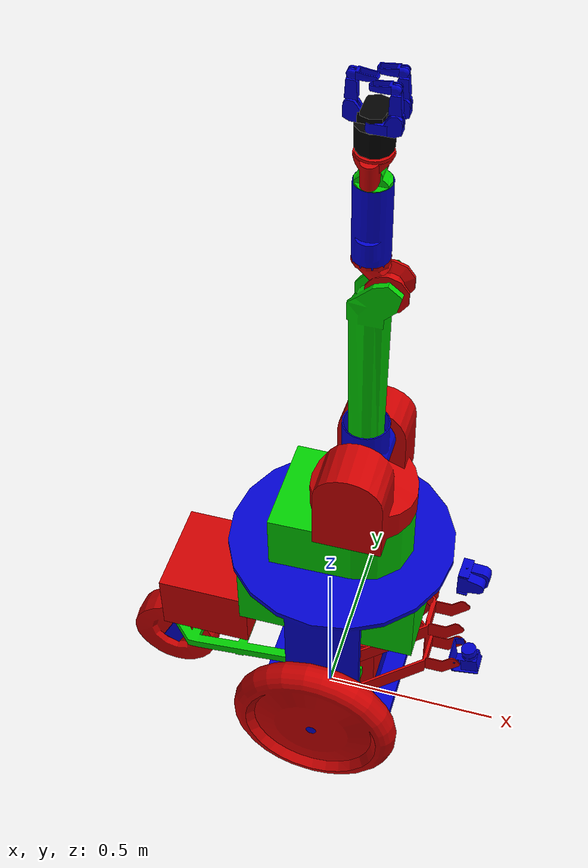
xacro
<?xml version="1.0"?>
<robot name="segbot"
	xmlns:sensor="http://playerstage.sourceforge.net/gazebo/xmlschema/#sensor"
	xmlns:controller="http://playerstage.sourceforge.net/gazebo/xmlschema/#controller"
	xmlns:interface="http://playerstage.sourceforge.net/gazebo/xmlschema/#interface">

	<!-- include gazebo defs-->
	<include filename="$(find segbot_description)/urdf/gazebo.urdf"/>

	<!-- include base defs-->
	<include filename="$(find segbot_description)/urdf/base.urdf"/>

	<!-- include arm defs-->
	<include filename="$(find segbot_description)/urdf/arm.urdf"/>

	<!-- include hand defs-->
	<include filename="$(find segbot_description)/urdf/hand.urdf"/>

	<!-- include sensors defs-->
	<include filename="$(find segbot_description)/urdf/sensors.urdf"/>
</robot>

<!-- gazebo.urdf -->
<robot name="gazebo"
	xmlns:sensor="http://playerstage.sourceforge.net/gazebo/xmlschema/#sensor"
	xmlns:controller="http://playerstage.sourceforge.net/gazebo/xmlschema/#controller"
	xmlns:interface="http://playerstage.sourceforge.net/gazebo/xmlschema/#interface">

  <material name="Blue">
    <color rgba="0.0 0.0 0.8 1.0"/>
  </material>
  <material name="Green">
    <color rgba="0.0 0.8 0.0 1.0"/>
  </material>
  <material name="Red">
    <color rgba="0.8 0.0 0.0 1.0"/>
  </material>
  <material name="White">
    <color rgba="0.0 0.0 0.0 1.0"/>
  </material>

  <gazebo>
    <controller:gazebo_ros_controller_manager name="gazebo_ros_controller_manager" plugin="libgazebo_ros_controller_manager.so">
      <alwaysOn>true</alwaysOn>
      <updateRate>1000.0</updateRate>
      <interface:audio name="gazebo_ros_controller_manager_dummy_iface" />
    </controller:gazebo_ros_controller_manager>
  </gazebo>

</robot>

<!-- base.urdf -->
<robot name="base"
       xmlns:sensor="http://playerstage.sourceforge.net/gazebo/xmlschema/#sensor"
       xmlns:controller="http://playerstage.sourceforge.net/gazebo/xmlschema/#controller"
       xmlns:xacro="http://ros.org/wiki/fixme"
       xmlns:interface="http://playerstage.sourceforge.net/gazebo/xmlschema/#interface">>

<!-- JOINT LIMIT VALUES FOR EFFORT AND VELOCITY NEED TO BE ADDED FOR REVOLUTE AND CONTINUOUS JOINTS -->

  <!-- base_footprint is a fictitious link(frame) that is on the ground right below base_link origin,
       navigation stack dedpends on this frame -->
  <link name="base_footprint">
    <inertial>
      <mass value="0.000001" />
      <origin xyz="0 0 0" />
      <inertia ixx="0.01" ixy="0.0" ixz="0.0"
               iyy="0.01" iyz="0.0" izz="0.01" />
    </inertial>
    <visual>
      <origin xyz="0 0 0" rpy="0 0 0" />
      <geometry>
        <box size="0.0 0.0 0.0" />
      </geometry>

      <material name="Green" />
    </visual>
    <collision>
      <!-- represent base collision with a simple rectangular model, positioned by base_size_z s.t. top
           surface of the collision box matches the top surface of the PR2 base -->
      <origin xyz="0 0 0" rpy="0 0 0" />
      <geometry>
        <box size="0.00 0.00 0.00" />
      </geometry>
    </collision>
  </link>

  <!-- Base -->

  <!-- Links -->
  <link name="base_link">
    <inertial>
      <origin xyz="0 -0.3 0" rpy="0 0 0" />
      <mass value="90.72"/>
      <inertia ixx="1.2285"  ixy="0"  ixz="0" iyy="1.961064" iyz="0" izz="1.337364" />
    </inertial>

    <visual>
      <origin xyz="0 0 0" rpy="0 0 0" />
      <geometry name="segway_base_geom">
        <mesh filename="package://segway_robot/meshes/segway_base.stl" />
      </geometry>
      <material name="Blue" />
    </visual>

    <collision>
      <origin xyz="0 0 0" rpy="0 0 0" />
      <geometry name="segway_base_collision_geom">
      <mesh filename="package://segway_robot/meshes/convex/segway_base_convex.stlb" />
      </geometry>
    </collision>

  </link>

  <link name="segway_left_wheel">
    <inertial>
      <origin xyz="0 0 0" rpy="0 0 0" />
      <mass value="3.87"/>
      <inertia ixx="0.0852"  ixy="0"  ixz="0" iyy="0.0852" iyz="0" izz="0.1654" />
    </inertial>

    <visual>
      <origin xyz="0 0 0" rpy="0 0 0" />
      <geometry name="segway_left_wheel_geom">
        <mesh filename="package://segway_robot/meshes/segway_wheel.stl" />
      </geometry>
      <material name="Red" />
    </visual>

    <collision>
      <origin xyz="0 0 0" rpy="0 0 0" />
      <geometry name="segway_left_wheel_collision_geom">
      	<cylinder radius="0.2365" length="0.093"/>
      </geometry>
    </collision>

  </link>

  <link name="segway_right_wheel">
    <inertial>
      <origin xyz="0 0 0" rpy="0 0 0" />
      <mass value="3.87"/>
      <inertia ixx="0.0852"  ixy="0"  ixz="0" iyy="0.0852" iyz="0" izz="0.1654" />
    </inertial>

    <visual>
      <origin xyz="0 0 0" rpy="0 0 0" />
      <geometry name="segway_right_wheel_geom">
        <mesh filename="package://segway_robot/meshes/segway_wheel.stl"/>
      </geometry>
      <material name="Red" />
    </visual>

    <collision>
      <origin xyz="0 0 0" rpy="0 0 0" />
      <geometry name="segway_right_wheel_collision_geom">
      	<cylinder radius="0.2365" length="0.093"/>
      </geometry>
    </collision>

  </link>

  <link name="segway_trailer">
    <inertial>
      <origin xyz="0.15 0.075 0" rpy="0 0 0" />
      <mass value="34.54"/>
      <inertia ixx="0.288"  ixy="0"  ixz="0" iyy="0.547" iyz="0" izz="0.446" />
    </inertial>

    <visual>
      <origin xyz="0 0 0" rpy="0 0 0" />
      <geometry name="segway_trailer-geom">
          <mesh filename="package://segway_robot/meshes/trailer.stl" />
      </geometry>
      <material name="Green" />
    </visual>

    <collision>
      <origin xyz="0 0 0" rpy="0 0 0" />
      <geometry name="segway_trailer_collision_geom">
        <mesh filename="package://segway_robot/meshes/convex/trailer_convex.stlb" />
      </geometry>
    </collision>

  </link>

  <link name="segway_trailer_wheel_caster">
    <inertial>
      <origin xyz="0 0 0" rpy="0 0 0" />
      <mass value="1.2"/>
      <inertia ixx="0.01"  ixy="0"  ixz="0" iyy="0.01" iyz="0" izz="0.01" />
    </inertial>

    <visual>
      <origin xyz="0 0 0" rpy="0 0 0" />
      <geometry name="segway_trailer_wheel_caster-geom">
          <mesh filename="package://segway_robot/meshes/trailer_wheel_caster.stl" />
      </geometry>
      <material name="Blue" />
    </visual>

    <collision>
      <origin xyz="0 0 0" rpy="0 0 0" />
      <geometry name="segway_trailer_wheel_caster_collision_geom">
        <mesh filename="package://segway_robot/meshes/convex/trailer_wheel_caster_convex.stlb" />
      </geometry>
    </collision>

  </link>

  <link name="segway_trailer_wheel">
    <inertial>
      <origin xyz="0 0 0" rpy="0 0 0" />
      <mass value="2.5"/>
      <inertia ixx="0.042"  ixy="0"  ixz="0" iyy="0.042" iyz="0" izz="0.082" />
    </inertial>

    <visual>
      <origin xyz="0 0 0" rpy="0 0 0" />
      <geometry name="segway_trailer_wheel-geom">
          <mesh filename="package://segway_robot/meshes/trailer_wheel.stl" />
      </geometry>
      <material name="Red" />
    </visual>

    <collision>
      <origin xyz="0 0 0" rpy="0 0 0" />
      <geometry name="segway_trailer_wheel_collision_geom">
        <cylinder radius="0.1285" length="0.097"/>
      </geometry>
    </collision>

  </link>

  <link name="battery_one">
    <inertial>
      <origin xyz="0 0 0" rpy="0 0 0" />
      <mass value="22.68"/>
      <inertia ixx="0.201"  ixy="0"  ixz="0" iyy="0.263" iyz="0" izz="0.182" />
    </inertial>

    <visual>
      <origin xyz="0 0 0" rpy="0 0 0" />
      <geometry name="battery_one_geom">
	<box size = "0.254 0.178 0.273" />
      </geometry>
      <material name="Red" />
    </visual>

    <collision>
      <origin xyz="0 0 0" rpy="0 0 0" />
      <geometry name="battery_one_collision_geom">
	<box size = "0.254 0.178 0.273" />
      </geometry>
    </collision>

  </link>

  <link name="battery_two">
    <inertial>
      <origin xyz="0 0 0" rpy="0 0 0" />
      <mass value="22.68"/>
      <inertia ixx="0.201"  ixy="0"  ixz="0" iyy="0.263" iyz="0" izz="0.182" />
    </inertial>

    <visual>
      <origin xyz="0 0 0" rpy="0 0 0" />
      <geometry name="battery_two_geom">
	<box size = "0.254 0.178 0.273" />
      </geometry>
      <material name="Red" />
    </visual>

    <collision>
      <origin xyz="0 0 0" rpy="0 0 0" />
      <geometry name="battery_two_collision_geom">
	<box size = "0.254 0.178 0.273" />
      </geometry>
    </collision>

  </link>

  <link name="computer">
    <inertial>
      <origin xyz="0 0 0" rpy="0 0 0" />
      <mass value="4.54"/>
      <inertia ixx="0.063"  ixy="0"  ixz="0" iyy="0.136" iyz="0" izz="0.103" />
    </inertial>

    <visual>
      <origin xyz="0 0 0" rpy="0 0 0" />
      <geometry name="computer_geom">
	<box size = "0.484 0.198 0.356" />
      </geometry>
      <material name="Green" />
    </visual>

    <collision>
      <origin xyz="0 0 0" rpy="0 0 0" />
      <geometry name="segway_base_collision_geom">
	<box size = "0.484 0.198 0.356" />
      </geometry>
    </collision>

  </link>

  <link name="segway_laser_bracket">
    <inertial>
      <origin xyz="0 0 0" rpy="0 0 0" />
      <mass value="2.27"/>
      <inertia ixx="0.01"  ixy="0"  ixz="0" iyy="0.01" iyz="0" izz="0.01" />
    </inertial>

    <visual>
      <origin xyz="0 0 0" rpy="0 0 0" />
      <geometry name="segway_laser_bracket-geom">
          <mesh filename="package://segway_robot/meshes/laser_bracket.stl" />
      </geometry>
      <material name="Red" />
    </visual>

    <collision>
      <origin xyz="0 0 0" rpy="0 0 0" />
      <geometry name="segway_laser_bracket_collision_geom">
      <mesh filename="package://segway_robot/meshes/convex/laser_bracket_convex.stlb" />
      </geometry>
    </collision>

  </link>

  <link name="R283_hokuyo_laser1">
    <inertial>
      <origin xyz="-0.025 -0.017 0" rpy="0 0 0" />
      <mass value="0.37"/>
      <inertia ixx="0.0004"  ixy="0"  ixz="0" iyy="0.0004" iyz="0" izz="0.0004" />
    </inertial>

    <visual>
      <origin xyz="0 0 0" rpy="0 0 0" />
      <geometry name="R283_hokuyo_laser1-geom">
          <mesh filename="package://segway_robot/meshes/R283_hokuyo_laser1.stl" />
      </geometry>
      <material name="Blue" />
    </visual>

    <collision>
      <origin xyz="0 0 0" rpy="0 0 0" />
      <geometry name="R283_hokuyo_laser1_collision_geom">
      <mesh filename="package://segway_robot/meshes/convex/R283_hokuyo_laser1_convex.stlb" />
      </geometry>
    </collision>

  </link>

  <link name="R313_hokuyo_laser2">
    <inertial>
      <origin xyz="-0.023 0 0" rpy="3.14159 0 0" />
      <mass value="0.37"/>
      <inertia ixx="0.0004"  ixy="0"  ixz="0" iyy="0.0004" iyz="0" izz="0.0004" />
    </inertial>

    <visual>
      <origin xyz="0 0 0" rpy="3.14159 0 0" />
      <geometry name="R313_hokuyo_laser2-geom">
          <mesh filename="package://segway_robot/meshes/R313_hokuyo_laser2.stl" />
      </geometry>
      <material name="Blue" />
    </visual>

    <collision>
      <origin xyz="0 0 0" rpy="3.14159 0 0" />
      <geometry name="R283_hokuyo_laser1_collision_geom">
      <mesh filename="package://segway_robot/meshes/convex/R313_hokuyo_laser2_convex.stlb" />
      </geometry>
    </collision>

  </link>

  <!-- Joints -->

  <joint name="base_footprint_joint" type="fixed">
    <origin xyz="0 0 0.55" rpy="1.57 0 3.14159" />
    <child link="base_link" />
    <parent link="base_footprint"/>
  </joint>

  <joint name="segway_left_wheel_joint" type="continuous" >
    <origin xyz="-0.031 -0.353 0.272" rpy="0 0 0"/>
    <axis xyz="0 0 1"/>
    <limit effort="122" velocity="500"/>
    <parent link="base_link" />
    <child link="segway_left_wheel" />
    <calibration reference_position="0.0"/>
  </joint>

  <joint name="segway_right_wheel_joint" type="continuous" >
    <origin xyz="-0.031 -0.353 -0.272" rpy="0 3.14 0"/>
    <axis xyz="0 0 1"/>
    <limit effort="122" velocity="500"/>
    <parent link="base_link" />
    <child link="segway_right_wheel" />
    <calibration reference_position="0.0"/>
  </joint>

  <joint name="segway_trailer_joint" type="fixed">
    <origin xyz="0.162 -0.233 0.002" rpy="0 0 0" />
    <parent link="base_link" />
    <child link="segway_trailer" />
    <calibration reference_position="0.0"/>
  </joint>

  <joint name="segway_trailer_wheel_caster_joint" type="continuous">
    <origin xyz="0.244 -0.038 0.002" rpy="0 0 0" />
    <axis xyz="0 1 0"/>
    <parent link="segway_trailer" />
    <child link="segway_trailer_wheel_caster" />
    <calibration reference_position="0.0"/>
  </joint>

  <joint name="segway_trailer_wheel_joint" type="continuous">
    <origin xyz="0.076 -0.187 0.002" rpy="0 0 0" />
    <axis xyz="0 0 1"/>
    <parent link="segway_trailer_wheel_caster" />
    <child link="segway_trailer_wheel" />
    <calibration reference_position="0.0"/>
  </joint>

  <joint name="battery_one_joint" type="fixed">
    <origin xyz="-0.037 -0.231 0" rpy="0 0 0" />
    <parent link="base_link" />
    <child link="battery_one" />
    <calibration reference_position="0.0"/>
  </joint>

  <joint name="battery_two_joint" type="fixed">
    <origin xyz="0.171 0.074 0" rpy="0 0 0" />
    <parent link="segway_trailer" />
    <child link="battery_two" />
    <calibration reference_position="0.0"/>
  </joint>

  <joint name="computer_joint" type="fixed">
    <origin xyz="-0.033 0.025 0" rpy="0 0 0" />
    <parent link="base_link" />
    <child link="computer" />
    <calibration reference_position="0.0"/>
  </joint>

  <joint name="segway_laser_bracket_joint" type="fixed">
    <origin xyz="-0.213 -0.2 0.002" rpy="0 0 0" />
    <parent link="base_link" />
    <child link="segway_laser_bracket" />
    <calibration reference_position="0.0"/>
  </joint>

  <joint name="R283_hokuyo_laser1_joint" type="revolute">
    <origin xyz="-0.162 -0.062 0" rpy="0 0 -0.1848" />
    <axis xyz="0 0 1"/>
    <limit lower="-1.047" upper="1.047" effort="50" velocity="50"/>
    <parent link="segway_laser_bracket" />
    <child link="R283_hokuyo_laser1" />
    <calibration reference_position="0.0"/>
  </joint>

  <joint name="R313_hokuyo_laser2_joint" type="revolute">
    <origin xyz="-0.162 0.283 0" rpy="1.57 -0.05 0" />
    <axis xyz="0 0 1"/>
    <limit lower="-1.047" upper="1.047" effort="50" velocity="50"/>
    <parent link="segway_laser_bracket" />
    <child link="R313_hokuyo_laser2" />
    <calibration reference_position="0.0"/>
  </joint>

  <!-- Gazebo uses this to color -->

  <gazebo reference="base_link">
    <material value="Gazebo/Blue"/>
    <turnGravityOff>false</turnGravityOff>
  </gazebo>

  <gazebo reference="segway_left_wheel">
    <material value="Gazebo/Red"/>
    <turnGravityOff>false</turnGravityOff>
  </gazebo>

  <gazebo reference="segway_right_wheel">
    <material value="Gazebo/Red"/>
    <turnGravityOff>false</turnGravityOff>
  </gazebo>

  <gazebo reference="segway_trailer">
    <material value="Gazebo/Green"/>
    <turnGravityOff>false</turnGravityOff>
  </gazebo>

  <gazebo reference="segway_trailer_wheel_caster">
    <material value="Gazebo/Blue"/>
    <turnGravityOff>false</turnGravityOff>
  </gazebo>

  <gazebo reference="segway_trailer_wheel">
    <material value="Gazebo/Red"/>
    <turnGravityOff>false</turnGravityOff>
  </gazebo>

  <gazebo reference="battery_one">
    <material value="Gazebo/Red"/>
    <turnGravityOff>false</turnGravityOff>
  </gazebo>

  <gazebo reference="battery_two">
    <material value="Gazebo/Red"/>
    <turnGravityOff>false</turnGravityOff>
  </gazebo>

  <gazebo reference="computer">
    <material value="Gazebo/Green"/>
    <turnGravityOff>false</turnGravityOff>
  </gazebo>

  <gazebo reference="segway_laser_bracket">
    <material value="Gazebo/Green"/>
    <turnGravityOff>false</turnGravityOff>
  </gazebo>

  <gazebo reference="R283_hokuyo_laser1">
    <material value="Gazebo/Red"/>
    <turnGravityOff>false</turnGravityOff>
  </gazebo>

  <gazebo reference="R313_hokuyo_laser2">
    <material value="Gazebo/Red"/>
    <turnGravityOff>false</turnGravityOff>
  </gazebo>

  <!-- Transmits the joints -->

  <transmission name="segway_left_wheel_trans" type="SimpleTransmission">
    <actuator name="segway_left_wheel_motor"/>
    <joint name="segway_left_wheel_joint"/>
    <mechanicalReduction>1.0</mechanicalReduction>
  </transmission>

  <transmission name="segway_right_wheel_trans" type="SimpleTransmission">
    <actuator name="segway_right_wheel_motor"/>
    <joint name="segway_right_wheel_joint"/>
    <mechanicalReduction>1.0</mechanicalReduction>
  </transmission>

  <transmission name="segway_trailer_wheel_caster_trans" type="SimpleTransmission">
    <actuator name="segway_trailer_wheel_caster_motor"/>
    <joint name="segway_trailer_wheel_caster_joint"/>
    <mechanicalReduction>1.0</mechanicalReduction>
  </transmission>

  <transmission name="segway_trailer_wheel_trans" type="SimpleTransmission">
    <actuator name="segway_trailer_wheel_motor"/>
    <joint name="segway_trailer_wheel_joint"/>
    <mechanicalReduction>1.0</mechanicalReduction>
  </transmission>

  <transmission name="R283_hokuyo_laser1_trans" type="SimpleTransmission">
    <actuator name="R283_hokuyo_laser1_motor"/>
    <joint name="R283_hokuyo_laser1_joint"/>
    <mechanicalReduction>1.0</mechanicalReduction>
  </transmission>

  <transmission name="R313_hokuyo_laser2_trans" type="SimpleTransmission">
    <actuator name="R313_hokuyo_laser2_motor"/>
    <joint name="R313_hokuyo_laser2_joint"/>
    <mechanicalReduction>1.0</mechanicalReduction>
  </transmission>

  <gazebo>
    <controller:gazebo_ros_p3d name="p3d_base_controller" plugin="libgazebo_ros_p3d.so">
      <alwaysOn>true</alwaysOn>
      <updateRate>100.0</updateRate>
      <bodyName>base_footprint</bodyName>
      <topicName>base_pose_ground_truth</topicName>
      <gaussianNoise>0.01</gaussianNoise>
      <frameName>map</frameName>
      <xyzOffsets>25.7 25.7 0</xyzOffsets> <!-- initialize odometry for fake localization-->
      <rpyOffsets>0 0 0</rpyOffsets>
      <interface:position name="p3d_base_position"/>
    </controller:gazebo_ros_p3d>
    <canonicalBody>base_footprint</canonicalBody>
  </gazebo>

</robot>

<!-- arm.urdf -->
<robot name="arm"
       xmlns:sensor="http://playerstage.sourceforge.net/gazebo/xmlschema/#sensor"
       xmlns:controller="http://playerstage.sourceforge.net/gazebo/xmlschema/#controller"
       xmlns:xacro="http://ros.org/wiki/fixme"
       xmlns:interface="http://playerstage.sourceforge.net/gazebo/xmlschema/#interface">>

<!-- JOINT LIMIT VALUES FOR EFFORT AND VELOCITY NEED TO BE ADDED FOR REVOLUTE AND CONTINUOUS JOINTS -->

  <!-- Arm -->

  <!-- Links -->
  <link name="arm_base">
    <inertial>
        <origin xyz="0 0.08 -0.04" rpy="0 0 0" />
        <mass value="10"/>
        <inertia ixx="0.129"  ixy="0"  ixz="0" iyy="0.173" iyz="0" izz="0.087" />
    </inertial>

    <visual>
        <origin xyz="0 0 0" rpy="0 0 0" />
        <geometry name="arm_base-geom">
          <mesh filename="package://segway_robot/meshes/arm_base.stl" />
        </geometry>
        <material name="Green" />
    </visual>

    <collision>
      <origin xyz="0 0 0" rpy="0 0 0" />
      <geometry name="arm_base_collision_geom">
      <mesh filename="package://segway_robot/meshes/convex/arm_base_convex.stlb" />
      </geometry>
    </collision>

  </link>

  <link name="shoulder_pan">
    <inertial>
        <origin xyz="0 -0.048 0" rpy="0 0 0" />
        <mass value="8.394"/>
        <inertia ixx="0.138"  ixy="0"  ixz="0" iyy="0.14" iyz="0" izz="0.108" />
    </inertial>

    <visual>
        <origin xyz="0 0 0" rpy="0 0 0" />
        <geometry name="shoulder_pan-geom">
          <mesh filename="package://segway_robot/meshes/shoulder_pan.stl" />
        </geometry>
        <material name="Red" />
    </visual>

    <collision>
      <origin xyz="0 0 0" rpy="0 0 0" />
      <geometry name="shoulder_pan_collision_geom">
      <mesh filename="package://segway_robot/meshes/convex/shoulder_pan_convex.stlb" />
      </geometry>
    </collision>

  </link>

  <link name="shoulder_pitch">
    <inertial>
        <origin xyz="0 0.023 0" rpy="0 0 0" />
        <mass value="4.849"/>
        <inertia ixx="0.018"  ixy="0"  ixz="0" iyy="0.012" iyz="0" izz="0.018" />
    </inertial>

    <visual>
        <origin xyz="0 0 0" rpy="0 0 0" />
        <geometry name="shoulder_pitch-geom">
          <mesh filename="package://segway_robot/meshes/shoulder_pitch.stl" />
        </geometry>
        <material name="Blue" />
    </visual>

    <collision>
      <origin xyz="0 0 0" rpy="0 0 0" />
      <geometry name="shoulder_pitch_collision_geom">
      <mesh filename="package://segway_robot/meshes/convex/shoulder_pitch_convex.stlb" />
      </geometry>
    </collision>

  </link>

  <link name="upper_arm_roll">
    <inertial>
        <origin xyz="0 0.295 -0.02" rpy="0 0 0" />
        <mass value="1.725"/>
        <inertia ixx="0.051"  ixy="0"  ixz="0" iyy="0.002" iyz="0" izz="0.051" />
    </inertial>

    <visual>
        <origin xyz="0 0 0" rpy="0 0 0" />
        <geometry name="upper_arm_roll-geom">
          <mesh filename="package://segway_robot/meshes/upper_arm_roll.stl" />
        </geometry>
        <material name="Green" />
    </visual>

    <collision>
      <origin xyz="0 0 0" rpy="0 0 0" />
      <geometry name="upper_arm_roll_collision_geom">
      <mesh filename="package://segway_robot/meshes/convex/upper_arm_roll_convex.stlb" />
      </geometry>
    </collision>

  </link>

  <link name="elbow_lift">
    <inertial>
        <origin xyz="0 0.018 0.013" rpy="0 0 0" />
        <mass value="0.481"/>
        <inertia ixx="0.001"  ixy="0"  ixz="0" iyy="0.001" iyz="0" izz="0.001" />
    </inertial>

    <visual>
        <origin xyz="0 0 0" rpy="0 0 0" />
        <geometry name="elbow_lift-geom">
          <mesh filename="package://segway_robot/meshes/elbow_lift.stl" />
        </geometry>
        <material name="Red" />
    </visual>

    <collision>
      <origin xyz="0 0 0" rpy="0 0 0" />
      <geometry name="elbow_lift_collision_geom">
      <mesh filename="package://segway_robot/meshes/convex/elbow_lift_convex.stlb" />
      </geometry>
    </collision>

  </link>

  <link name="forearm_roll">
    <inertial>
        <origin xyz="0 0.100 0" rpy="0 0 0" />
        <mass value="1.602"/>
        <inertia ixx="0.007"  ixy="0"  ixz="0" iyy="0.003" iyz="0" izz="0.007" />
    </inertial>

    <visual>
        <origin xyz="0 0 0" rpy="0 0 0" />
        <geometry name="forearm_roll-geom">
          <mesh filename="package://segway_robot/meshes/forearm_roll.stl" />
        </geometry>
        <material name="Blue" />
    </visual>

    <collision>
      <origin xyz="0 0 0" rpy="0 0 0" />
      <geometry name="forearm_roll_collision_geom">
      <mesh filename="package://segway_robot/meshes/convex/forearm_roll_convex.stlb" />
      </geometry>
    </collision>

  </link>

  <link name="wrist_roll">
    <inertial>
        <origin xyz="0 -0.002 0" rpy="0 0 0" />
        <mass value="1.18"/>
        <inertia ixx="0.001"  ixy="0"  ixz="0" iyy="0.001" iyz="0" izz="0.001" />
    </inertial>

    <visual>
        <origin xyz="0 0 0" rpy="0 0 0" />
        <geometry name="wrist_roll-geom">
          <mesh filename="package://segway_robot/meshes/wrist_roll.stl" />
        </geometry>
        <material name="Green" />
    </visual>

    <collision>
      <origin xyz="0 0 0" rpy="0 0 0" />
      <geometry name="wrist_roll_collision_geom">
      <mesh filename="package://segway_robot/meshes/convex/wrist_roll_convex.stlb" />
      </geometry>
    </collision>

  </link>

  <link name="wrist_pitch">
    <inertial>
        <origin xyz="-0.007 0.018 0" rpy="0 0 0" />
        <mass value="0.307"/>
        <inertia ixx="0.0004"  ixy="0"  ixz="0" iyy="0.0005" iyz="0" izz="0.0005" />
    </inertial>

    <visual>
        <origin xyz="0 0 0" rpy="0 0 0" />
        <geometry name="wrist_pitch-geom">
          <mesh filename="package://segway_robot/meshes/wrist_pitch.stl" />
        </geometry>
        <material name="Red" />
    </visual>

    <collision>
      <origin xyz="0 0 0" rpy="0 0 0" />
      <geometry name="wrist_pitch_collision_geom">
      <mesh filename="package://segway_robot/meshes/convex/wrist_pitch_convex.stlb" />
      </geometry>
    </collision>

  </link>

  <!-- Joints -->
  <joint name="arm_base_joint" type="fixed">
    <origin xyz="-0.088 0.14 0.005" rpy="0 -1.57 0" />
    <child link="arm_base" />
    <parent link="base_link"/>
  </joint>

  <joint name="shoulder_pan_joint" type="revolute">
    <origin xyz="0 0.346 0" rpy="0 1.57 0" />
    <axis xyz="0 1 0"/>
    <limit lower="-2.6" upper="2.6" effort="50" velocity="50"/>
    <child link="shoulder_pan" />
    <parent link="arm_base"/>
  </joint>

  <joint name="shoulder_pitch_joint" type="revolute">
    <origin xyz="0 0 0" rpy="0 1.57 0" />
    <axis xyz="1 0 0"/>
    <limit lower="-2" upper="2" effort="50" velocity="50"/>
    <child link="shoulder_pitch" />
    <parent link="shoulder_pan"/>
  </joint>

  <joint name="upper_arm_roll_joint" type="revolute">
    <origin xyz="0 0 0" rpy="0 0 0" />
    <axis xyz="0 1 0"/>
    <limit lower="-2.8" upper="2.8" effort="50" velocity="50"/>
    <child link="upper_arm_roll" />
    <parent link="shoulder_pitch"/>
  </joint>

  <joint name="elbow_lift_joint" type="revolute">
    <origin xyz="0 0.550 -0.045" rpy="-1.57 3.14 0 " />
    <axis xyz="1 0 0"/>
    <limit lower="-0.9" upper="3.1" effort="50" velocity="50"/>
    <child link="elbow_lift" />
    <parent link="upper_arm_roll"/>
  </joint>

  <joint name="forearm_roll_joint" type="revolute">
    <origin xyz="0 0.045 0.072" rpy="1.57 0 0" />
    <axis xyz="0 1 0"/>
    <limit lower="-4.8" upper="1.3" effort="50" velocity="50"/>
    <child link="forearm_roll" />
    <parent link="elbow_lift"/>
  </joint>

  <joint name="wrist_roll_joint" type="revolute">
    <origin xyz="0 0.227 0" rpy="0 0 0" />
    <axis xyz="0 1 0"/>
    <limit lower="-2.2" upper="2.2" effort="50" velocity="50"/>
    <child link="wrist_roll" />
    <parent link="forearm_roll"/>
  </joint>

  <joint name="wrist_pitch_joint" type="revolute">
    <origin xyz="0 0 0" rpy="0 0 0" />
    <axis xyz="1 0 0"/>
    <limit lower="-1.6" upper="1.6" effort="50" velocity="50"/>
    <child link="wrist_pitch" />
    <parent link="wrist_roll"/>
  </joint>

  <!-- Gazebo data -->
  <gazebo reference="arm_base">
    <material value="Gazebo/Green"/>
    <turnGravityOff>false</turnGravityOff>
  </gazebo>

  <gazebo reference="shoulder_pan">
    <material value="Gazebo/Red"/>
    <turnGravityOff>false</turnGravityOff>
  </gazebo>

  <gazebo reference="shoulder_pitch">
    <material value="Gazebo/Blue"/>
    <turnGravityOff>false</turnGravityOff>
  </gazebo>

  <gazebo reference="upper_arm_roll">
    <material value="Gazebo/Green"/>
    <turnGravityOff>false</turnGravityOff>
  </gazebo>

  <gazebo reference="elbow_lift">
    <material value="Gazebo/Red"/>
    <turnGravityOff>false</turnGravityOff>
  </gazebo>

  <gazebo reference="forearm_roll">
    <material value="Gazebo/Blue"/>
    <turnGravityOff>false</turnGravityOff>
  </gazebo>

  <gazebo reference="wrist_roll">
    <material value="Gazebo/Green"/>
    <turnGravityOff>false</turnGravityOff>
  </gazebo>

  <gazebo reference="wrist_pitch">
    <material value="Gazebo/Red"/>
    <turnGravityOff>false</turnGravityOff>
  </gazebo>

  <!-- Transmits the joints -->
  <transmission name="shoulder_pan_joint_trans" type="SimpleTransmission">
    <actuator name="shoulder_pan_joint_motor"/>
    <joint name="shoulder_pan_joint"/>
    <mechanicalReduction>1.0</mechanicalReduction>
  </transmission>

  <transmission name="shoulder_pitch_joint_trans" type="SimpleTransmission">
    <actuator name="shoulder_pitch_joint_motor"/>
    <joint name="shoulder_pitch_joint"/>
    <mechanicalReduction>1.0</mechanicalReduction>
  </transmission>

  <transmission name="upper_arm_roll_joint_trans" type="SimpleTransmission">
    <actuator name="upper_arm_roll_joint_motor"/>
    <joint name="upper_arm_roll_joint"/>
    <mechanicalReduction>1.0</mechanicalReduction>
  </transmission>

  <transmission name="elbow_lift_joint_trans" type="SimpleTransmission">
    <actuator name="elbow_lift_joint_motor"/>
    <joint name="elbow_lift_joint"/>
    <mechanicalReduction>1.0</mechanicalReduction>
  </transmission>

  <transmission name="forearm_roll_joint_trans" type="SimpleTransmission">
    <actuator name="forearm_roll_joint_motor"/>
    <joint name="forearm_roll_joint"/>
    <mechanicalReduction>1.0</mechanicalReduction>
  </transmission>

  <transmission name="wrist_roll_joint_trans" type="SimpleTransmission">
    <actuator name="wrist_roll_joint_motor"/>
    <joint name="wrist_roll_joint"/>
    <mechanicalReduction>1.0</mechanicalReduction>
  </transmission>

  <transmission name="wrist_pitch_joint_trans" type="SimpleTransmission">
    <actuator name="wrist_pitch_joint_motor"/>
    <joint name="wrist_pitch_joint"/>
    <mechanicalReduction>1.0</mechanicalReduction>
  </transmission>

</robot>

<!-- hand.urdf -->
<robot name="hand"
       xmlns:sensor="http://playerstage.sourceforge.net/gazebo/xmlschema/#sensor"
       xmlns:controller="http://playerstage.sourceforge.net/gazebo/xmlschema/#controller"
       xmlns:xacro="http://ros.org/wiki/fixme"
       xmlns:interface="http://playerstage.sourceforge.net/gazebo/xmlschema/#interface">>

<!-- JOINT LIMIT VALUES FOR EFFORT AND VELOCITY NEED TO BE ADDED FOR REVOLUTE AND CONTINUOUS JOINTS -->

  <!-- Hand -->

  <!-- Links -->
  <link name="hand_base">
    <inertial>
        <origin xyz="0 0.0 0.0" rpy="0 0 0" />
        <mass value="0.35"/>
        <inertia ixx="1"  ixy="0"  ixz="0" iyy="1" iyz="0" izz="1" />
    </inertial>

    <visual>
        <origin xyz="0 0 0" rpy="0 0 0" />
        <geometry name="hand_base-geom">
          <mesh filename="package://segway_robot/meshes/hand_base.stl" />
        </geometry>
        <material name="White" />
    </visual>

    <collision>
      <origin xyz="0 0 0" rpy="0 0 0" />
      <geometry name="arm_base_collision_geom">
      <mesh filename="package://segway_robot/meshes/convex/hand_base_convex.stlb" />
      </geometry>
    </collision>

  </link>

  <link name="spreader_f1">
    <inertial>
        <origin xyz="0 0 0" rpy="0 0 0" />
        <mass value="0.05"/>
        <inertia ixx="1"  ixy="0"  ixz="0" iyy="1" iyz="0" izz="1" />
    </inertial>

    <visual>
        <origin xyz="0 0 0" rpy="0 0 0" />
        <geometry name="hand_base-geom">
          <mesh filename="package://segway_robot/meshes/spread_joint.stl" />
        </geometry>
        <material name="Blue" />
    </visual>

    <collision>
      <origin xyz="0 0 0" rpy="0 0 0" />
      <geometry name="arm_base_collision_geom">
      <mesh filename="package://segway_robot/meshes/convex/spread_joint_convex.stlb" />
      </geometry>
    </collision>

  </link>

  <link name="spreader_f2">
    <inertial>
        <origin xyz="0 0 0" rpy="0 0 0" />
        <mass value="0.05"/>
        <inertia ixx="1"  ixy="0"  ixz="0" iyy="1" iyz="0" izz="1" />
    </inertial>

    <visual>
        <origin xyz="0 0 0" rpy="0 0 0" />
        <geometry name="hand_base-geom">
          <mesh filename="package://segway_robot/meshes/spread_joint.stl" />
        </geometry>
        <material name="Blue" />
    </visual>

    <collision>
      <origin xyz="0 0 0" rpy="0 0 0" />
      <geometry name="arm_base_collision_geom">
      <mesh filename="package://segway_robot/meshes/convex/spread_joint_convex.stlb" />
      </geometry>
    </collision>

  </link>

  <link name="proximal_knuckle_f1">
    <inertial>
        <origin xyz="0 0 0" rpy="0 0 0" />
        <mass value="0.05"/>
        <inertia ixx="1"  ixy="0"  ixz="0" iyy="1" iyz="0" izz="1" />
    </inertial>

    <visual>
        <origin xyz="0 0 0" rpy="0 0 0" />
        <geometry name="hand_base-geom">
          <mesh filename="package://segway_robot/meshes/proximal_knuckle.stl" />
        </geometry>
        <material name="Blue" />
    </visual>

    <collision>
      <origin xyz="0 0 0" rpy="0 0 0" />
      <geometry name="arm_base_collision_geom">
      <mesh filename="package://segway_robot/meshes/convex/proximal_knuckle_convex.stlb" />
      </geometry>
    </collision>

  </link>

  <link name="proximal_knuckle_f2">
    <inertial>
        <origin xyz="0 0 0" rpy="0 0 0" />
        <mass value="0.05"/>
        <inertia ixx="1"  ixy="0"  ixz="0" iyy="1" iyz="0" izz="1" />
    </inertial>

    <visual>
        <origin xyz="0 0 0" rpy="0 0 0" />
        <geometry name="hand_base-geom">
          <mesh filename="package://segway_robot/meshes/proximal_knuckle.stl" />
        </geometry>
        <material name="Blue" />
    </visual>

    <collision>
      <origin xyz="0 0 0" rpy="0 0 0" />
      <geometry name="arm_base_collision_geom">
      <mesh filename="package://segway_robot/meshes/convex/proximal_knuckle_convex.stlb" />
      </geometry>
    </collision>

  </link>

  <link name="proximal_knuckle_f3">
    <inertial>
        <origin xyz="0 0 0" rpy="0 0 0" />
        <mass value="0.05"/>
        <inertia ixx="1"  ixy="0"  ixz="0" iyy="1" iyz="0" izz="1" />
    </inertial>

    <visual>
        <origin xyz="0 0 0" rpy="0 0 0" />
        <geometry name="hand_base-geom">
          <mesh filename="package://segway_robot/meshes/proximal_knuckle.stl" />
        </geometry>
        <material name="Blue" />
    </visual>

    <collision>
      <origin xyz="0 0 0" rpy="0 0 0" />
      <geometry name="arm_base_collision_geom">
      <mesh filename="package://segway_robot/meshes/convex/proximal_knuckle_convex.stlb" />
      </geometry>
    </collision>

  </link>

  <link name="proximal_link_f1">
    <inertial>
        <origin xyz="0 0 0" rpy="0 0 0" />
        <mass value="0.1"/>
        <inertia ixx="1"  ixy="0"  ixz="0" iyy="1" iyz="0" izz="1" />
    </inertial>

    <visual>
        <origin xyz="0 0 0" rpy="0 0 0" />
        <geometry name="hand_base-geom">
          <mesh filename="package://segway_robot/meshes/proximal_link.stl" />
        </geometry>
        <material name="Blue" />
    </visual>

    <collision>
      <origin xyz="0 0 0" rpy="0 0 0" />
      <geometry name="arm_base_collision_geom">
      <mesh filename="package://segway_robot/meshes/convex/proximal_link_convex.stlb" />
      </geometry>
    </collision>

  </link>

  <link name="proximal_link_f2">
    <inertial>
        <origin xyz="0 0 0" rpy="0 0 0" />
        <mass value="0.1"/>
        <inertia ixx="1"  ixy="0"  ixz="0" iyy="1" iyz="0" izz="1" />
    </inertial>

    <visual>
        <origin xyz="0 0 0" rpy="0 0 0" />
        <geometry name="hand_base-geom">
          <mesh filename="package://segway_robot/meshes/proximal_link.stl" />
        </geometry>
        <material name="Blue" />
    </visual>

    <collision>
      <origin xyz="0 0 0" rpy="0 0 0" />
      <geometry name="arm_base_collision_geom">
      <mesh filename="package://segway_robot/meshes/convex/proximal_link_convex.stlb" />
      </geometry>
    </collision>

  </link>

  <link name="proximal_link_f3">
    <inertial>
        <origin xyz="0 0 0" rpy="0 0 0" />
        <mass value="0.1"/>
        <inertia ixx="1"  ixy="0"  ixz="0" iyy="1" iyz="0" izz="1" />
    </inertial>

    <visual>
        <origin xyz="0 0 0" rpy="0 0 0" />
        <geometry name="hand_base-geom">
          <mesh filename="package://segway_robot/meshes/proximal_link.stl" />
        </geometry>
        <material name="Blue" />
    </visual>

    <collision>
      <origin xyz="0 0 0" rpy="0 0 0" />
      <geometry name="arm_base_collision_geom">
      <mesh filename="package://segway_robot/meshes/convex/proximal_link_convex.stlb" />
      </geometry>
    </collision>

  </link>

  <link name="distal_knuckle_f1">
    <inertial>
        <origin xyz="0 0 0" rpy="0 0 0" />
        <mass value="0.05"/>
        <inertia ixx="1"  ixy="0"  ixz="0" iyy="1" iyz="0" izz="1" />
    </inertial>

    <visual>
        <origin xyz="0 0 0" rpy="0 0 0" />
        <geometry name="hand_base-geom">
          <mesh filename="package://segway_robot/meshes/distal_knuckle.stl" />
        </geometry>
        <material name="Blue" />
    </visual>

    <collision>
      <origin xyz="0 0 0" rpy="0 0 0" />
      <geometry name="arm_base_collision_geom">
      <mesh filename="package://segway_robot/meshes/convex/distal_knuckle_convex.stlb" />
      </geometry>
    </collision>

  </link>

  <link name="distal_knuckle_f2">
    <inertial>
        <origin xyz="0 0 0" rpy="0 0 0" />
        <mass value="0.05"/>
        <inertia ixx="1"  ixy="0"  ixz="0" iyy="1" iyz="0" izz="1" />
    </inertial>

    <visual>
        <origin xyz="0 0 0" rpy="0 0 0" />
        <geometry name="hand_base-geom">
          <mesh filename="package://segway_robot/meshes/distal_knuckle.stl" />
        </geometry>
        <material name="Blue" />
    </visual>

    <collision>
      <origin xyz="0 0 0" rpy="0 0 0" />
      <geometry name="arm_base_collision_geom">
      <mesh filename="package://segway_robot/meshes/convex/distal_knuckle_convex.stlb" />
      </geometry>
    </collision>

  </link>

  <link name="distal_knuckle_f3">
    <inertial>
        <origin xyz="0 0 0" rpy="0 0 0" />
        <mass value="0.05"/>
        <inertia ixx="1"  ixy="0"  ixz="0" iyy="1" iyz="0" izz="1" />
    </inertial>

    <visual>
        <origin xyz="0 0 0" rpy="0 0 0" />
        <geometry name="hand_base-geom">
          <mesh filename="package://segway_robot/meshes/distal_knuckle.stl" />
        </geometry>
        <material name="Blue" />
    </visual>

    <collision>
      <origin xyz="0 0 0" rpy="0 0 0" />
      <geometry name="arm_base_collision_geom">
      <mesh filename="package://segway_robot/meshes/convex/distal_knuckle_convex.stlb" />
      </geometry>
    </collision>

  </link>

  <link name="finger_tip_f1">
    <inertial>
        <origin xyz="0 0 0" rpy="0 0 0" />
        <mass value="0.05"/>
        <inertia ixx="1"  ixy="0"  ixz="0" iyy="1" iyz="0" izz="1" />
    </inertial>

    <visual>
        <origin xyz="0 0 0" rpy="0 0 0" />
        <geometry name="hand_base-geom">
          <mesh filename="package://segway_robot/meshes/finger_tip.stl" />
        </geometry>
        <material name="Blue" />
    </visual>

    <collision>
      <origin xyz="0 0 0" rpy="0 0 0" />
      <geometry name="arm_base_collision_geom">
      <mesh filename="package://segway_robot/meshes/convex/finger_tip_convex.stlb" />
      </geometry>
    </collision>

  </link>

  <link name="finger_tip_f2">
    <inertial>
        <origin xyz="0 0 0" rpy="0 0 0" />
        <mass value="0.05"/>
        <inertia ixx="1"  ixy="0"  ixz="0" iyy="1" iyz="0" izz="1" />
    </inertial>

    <visual>
        <origin xyz="0 0 0" rpy="0 0 0" />
        <geometry name="hand_base-geom">
          <mesh filename="package://segway_robot/meshes/finger_tip.stl" />
        </geometry>
        <material name="Blue" />
    </visual>

    <collision>
      <origin xyz="0 0 0" rpy="0 0 0" />
      <geometry name="arm_base_collision_geom">
      <mesh filename="package://segway_robot/meshes/convex/finger_tip_convex.stlb" />
      </geometry>
    </collision>

  </link>

  <link name="finger_tip_f3">
    <inertial>
        <origin xyz="0 0 0" rpy="0 0 0" />
        <mass value="0.05"/>
        <inertia ixx="1"  ixy="0"  ixz="0" iyy="1" iyz="0" izz="1" />
    </inertial>

    <visual>
        <origin xyz="0 0 0" rpy="0 0 0" />
        <geometry name="hand_base-geom">
          <mesh filename="package://segway_robot/meshes/finger_tip.stl" />
        </geometry>
        <material name="Blue" />
    </visual>

    <collision>
      <origin xyz="0 0 0" rpy="0 0 0" />
      <geometry name="arm_base_collision_geom">
      <mesh filename="package://segway_robot/meshes/convex/finger_tip_convex.stlb" />
      </geometry>
    </collision>

  </link>

  <!-- Joints -->
  <joint name="hand_base_joint" type="fixed">
    <origin xyz="0 0.116 0" rpy="0 0 0" />
    <child link="hand_base" />
    <parent link="wrist_pitch"/>
  </joint>

  <joint name="spreader_joint_f1" type="revolute">
    <origin xyz="0.031 0.003 0" rpy="0 0 0" />
    <axis xyz="0 1 0"/>
    <limit lower="0" upper="3.14" effort="50" velocity="50"/>
    <child link="spreader_f1" />
    <parent link="hand_base"/>
  </joint>

  <joint name="spreader_joint_f2" type="revolute">
    <origin xyz="-0.031 0.003 0" rpy="0 0 0" />
    <axis xyz="0 1 0"/>
    <limit lower="-3.14" upper="0" effort="50" velocity="50"/>
    <child link="spreader_f2" />
    <parent link="hand_base"/>
  </joint>

  <joint name="proximal_knuckle_joint_f1" type="fixed">
    <origin xyz="0 0.034 0.05" rpy="0 3.14 0" />
    <child link="proximal_knuckle_f1" />
    <parent link="spreader_f1"/>
  </joint>

  <joint name="proximal_knuckle_joint_f2" type="fixed">
    <origin xyz="0 0.034 0.05" rpy="0 3.14 0" />
    <child link="proximal_knuckle_f2" />
    <parent link="spreader_f2"/>
  </joint>

  <joint name="proximal_knuckle_joint_f3" type="fixed">
    <origin xyz="0 0.037 -0.05" rpy="0 0 0" />
    <child link="proximal_knuckle_f3" />
    <parent link="hand_base"/>
  </joint>

  <joint name="proximal_link_joint_f1" type="revolute">
    <origin xyz="0 0 0" rpy="-1.57 0 0" />
    <axis xyz="1 0 0"/>
    <limit lower="-1.57" upper="0.873" effort="50" velocity="50"/>
    <child link="proximal_link_f1" />
    <parent link="proximal_knuckle_f1"/>
  </joint>

  <joint name="proximal_link_joint_f2" type="revolute">
    <origin xyz="0 0 0" rpy="-1.57 0 0" />
    <axis xyz="1 0 0"/>
    <limit lower="-1.57" upper="0.873" effort="50" velocity="50"/>
    <child link="proximal_link_f2" />
    <parent link="proximal_knuckle_f2"/>
  </joint>

  <joint name="proximal_link_joint_f3" type="revolute">
    <origin xyz="0 0 0" rpy="-1.57 0 0" />
    <axis xyz="1 0 0"/>
    <limit lower="-1.57" upper="0.873" effort="50" velocity="50"/>
    <child link="proximal_link_f3" />
    <parent link="proximal_knuckle_f3"/>
  </joint>

  <joint name="distal_knuckle_joint_f1" type="revolute">
    <origin xyz="0 0 0.071" rpy="1.57 0 0" />
    <axis xyz="1 0 0"/>
    <limit lower="-0.785" upper="0" effort="50" velocity="50"/>
    <child link="distal_knuckle_f1" />
    <parent link="proximal_link_f1"/>
  </joint>

  <joint name="distal_knuckle_joint_f2" type="revolute">
    <origin xyz="0 0 0.071" rpy="1.57 0 0" />
    <axis xyz="1 0 0"/>
    <limit lower="-0.785" upper="0" effort="50" velocity="50"/>
    <child link="distal_knuckle_f2" />
    <parent link="proximal_link_f2"/>
  </joint>

  <joint name="distal_knuckle_joint_f3" type="revolute">
    <origin xyz="0 0 0.071" rpy="1.57 0 0" />
    <axis xyz="1 0 0"/>
    <limit lower="-0.785" upper="0" effort="50" velocity="50"/>
    <child link="distal_knuckle_f3" />
    <parent link="proximal_link_f3"/>
  </joint>

  <joint name="finger_tip_joint_f1" type="fixed">
    <origin xyz="0 -0.009 0.01" rpy="-1.57 3.14 0" />
    <child link="finger_tip_f1" />
    <parent link="distal_knuckle_f1"/>
  </joint>

  <joint name="finger_tip_joint_f2" type="fixed">
    <origin xyz="0 -0.009 0.01" rpy="-1.57 3.14 0" />
    <child link="finger_tip_f2" />
    <parent link="distal_knuckle_f2"/>
  </joint>

  <joint name="finger_tip_joint_f3" type="fixed">
    <origin xyz="0 -0.009 0.01" rpy="-1.57 3.14 0" />
    <child link="finger_tip_f3" />
    <parent link="distal_knuckle_f3"/>
  </joint>

  <!-- Gazebo data -->
  <gazebo reference="hand_base">
    <material value="Gazebo/White"/>
    <turnGravityOff>false</turnGravityOff>
  </gazebo>

  <gazebo reference="spreader_f1">
    <material value="Gazebo/Blue"/>
    <turnGravityOff>false</turnGravityOff>
  </gazebo>

  <gazebo reference="spreader_f2">
    <material value="Gazebo/Blue"/>
    <turnGravityOff>false</turnGravityOff>
  </gazebo>

  <gazebo reference="proximal_knuckle_f1">
    <material value="Gazebo/Red"/>
    <turnGravityOff>false</turnGravityOff>
  </gazebo>

  <gazebo reference="proximal_knuckle_f2">
    <material value="Gazebo/Red"/>
    <turnGravityOff>false</turnGravityOff>
  </gazebo>

  <gazebo reference="proximal_knuckle_f3">
    <material value="Gazebo/Red"/>
    <turnGravityOff>false</turnGravityOff>
  </gazebo>

  <gazebo reference="proximal_link_f1">
    <material value="Gazebo/Blue"/>
    <turnGravityOff>false</turnGravityOff>
  </gazebo>

  <gazebo reference="proximal_link_f2">
    <material value="Gazebo/Blue"/>
    <turnGravityOff>false</turnGravityOff>
  </gazebo>

  <gazebo reference="proximal_link_f3">
    <material value="Gazebo/Blue"/>
    <turnGravityOff>false</turnGravityOff>
  </gazebo>

  <gazebo reference="distal_knuckle_f1">
    <material value="Gazebo/White"/>
    <turnGravityOff>false</turnGravityOff>
  </gazebo>

  <gazebo reference="distal_knuckle_f2">
    <material value="Gazebo/White"/>
    <turnGravityOff>false</turnGravityOff>
  </gazebo>

  <gazebo reference="distal_knuckle_f3">
    <material value="Gazebo/White"/>
    <turnGravityOff>false</turnGravityOff>
  </gazebo>

  <gazebo reference="finger_tip_f1">
    <material value="Gazebo/Red"/>
    <turnGravityOff>false</turnGravityOff>
  </gazebo>

  <gazebo reference="finger_tip_f2">
    <material value="Gazebo/Red"/>
    <turnGravityOff>false</turnGravityOff>
  </gazebo>

  <gazebo reference="finger_tip_f3">
    <material value="Gazebo/Red"/>
    <turnGravityOff>false</turnGravityOff>
  </gazebo>

  <!-- Transmits the joints -->
  <transmission name="spreader_joint_f1_trans" type="SimpleTransmission">
    <actuator name="spreader_joint_f1_motor"/>
    <joint name="spreader_joint_f1"/>
    <mechanicalReduction>1.0</mechanicalReduction>
  </transmission>

  <transmission name="spreader_joint_f2_trans" type="SimpleTransmission">
    <actuator name="spreader_joint_f2_motor"/>
    <joint name="spreader_joint_f2"/>
    <mechanicalReduction>1.0</mechanicalReduction>
  </transmission>

  <transmission name="proximal_link_joint_f1_trans" type="SimpleTransmission">
    <actuator name="proximal_link_joint_f1_motor"/>
    <joint name="proximal_link_joint_f1"/>
    <mechanicalReduction>1.0</mechanicalReduction>
  </transmission>

  <transmission name="proximal_link_joint_f2_trans" type="SimpleTransmission">
    <actuator name="proximal_link_joint_f2_motor"/>
    <joint name="proximal_link_joint_f2"/>
    <mechanicalReduction>1.0</mechanicalReduction>
  </transmission>

  <transmission name="proximal_link_joint_f3_trans" type="SimpleTransmission">
    <actuator name="proximal_link_joint_f3_motor"/>
    <joint name="proximal_link_joint_f3"/>
    <mechanicalReduction>1.0</mechanicalReduction>
  </transmission>

  <transmission name="distal_knuckle_joint_f1_trans" type="SimpleTransmission">
    <actuator name="distal_knuckle_joint_f1_motor"/>
    <joint name="distal_knuckle_joint_f1"/>
    <mechanicalReduction>1.0</mechanicalReduction>
  </transmission>

  <transmission name="distal_knuckle_joint_f2_trans" type="SimpleTransmission">
    <actuator name="distal_knuckle_joint_f2_motor"/>
    <joint name="distal_knuckle_joint_f2"/>
    <mechanicalReduction>1.0</mechanicalReduction>
  </transmission>

  <transmission name="distal_knuckle_joint_f3_trans" type="SimpleTransmission">
    <actuator name="distal_knuckle_joint_f3_motor"/>
    <joint name="distal_knuckle_joint_f3"/>
    <mechanicalReduction>1.0</mechanicalReduction>
  </transmission>

</robot>

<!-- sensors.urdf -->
<robot name="hand"
       xmlns:sensor="http://playerstage.sourceforge.net/gazebo/xmlschema/#sensor"
       xmlns:controller="http://playerstage.sourceforge.net/gazebo/xmlschema/#controller"
       xmlns:xacro="http://ros.org/wiki/fixme"
       xmlns:interface="http://playerstage.sourceforge.net/gazebo/xmlschema/#interface">>

<!-- JOINT LIMIT VALUES FOR EFFORT AND VELOCITY NEED TO BE ADDED FOR REVOLUTE AND CONTINUOUS JOINTS -->

  <!-- Laser base laser -->
  <!-- Joint to world. Simply change the name and parent link when attaching to own robot -->
  <joint name="base_laser_joint" type="fixed">
      <origin xyz="-0.057 0.010 0" rpy="1.57 0 3.14" />
      <parent link="R283_hokuyo_laser1"/>
      <child link="base_laser_link"/>
    </joint>

  <!--			 Laser body. Neglegibe geometry 			-->
  <link name="base_laser_link" type="laser">

      <inertial>
        <mass value="0.000001" />
        <origin xyz="0 0 0" rpy="0 0 0" />
        <inertia ixx="0.0001" ixy="0" ixz="0" iyy="0.000001" iyz="0" izz="0.0001" />
      </inertial>
      <visual>
        <origin xyz="0 0 0" rpy="0 0 0" />
        <geometry>
          <box size="0.000 0.000 0.000" />
        </geometry>
        <material name="Red" />
      </visual>
      <collision>
        <origin xyz="0 0 0" rpy="0 0 0" />
        <geometry>
          <box size=".000 .000 .00" />
        </geometry>
      </collision>

    </link>

<!-- 			Actual laser		 -->
    <gazebo reference="base_laser_link">
      <sensor:ray name="base_laser">
        <rayCount>1080</rayCount>
        <rangeCount>1080</rangeCount>
        <laserCount>1</laserCount>

        <origin>0.0 0.0 0.0</origin>
        <displayRays>false</displayRays>

        <minAngle>-120</minAngle>
        <maxAngle> 119</maxAngle>

        <minRange>0.05</minRange>
        <maxRange>10.0</maxRange>
        <resRange>0.01</resRange>
        <updateRate>20.0</updateRate>

        <controller:gazebo_ros_laser name="gazebo_ros_base_laser_controller" plugin="libgazebo_ros_laser.so">
          <gaussianNoise>0.005</gaussianNoise>
          <alwaysOn>true</alwaysOn>
          <updateRate>20.0</updateRate>
          <topicName>scan</topicName>
          <frameName>base_laser_link</frameName>
          <interface:laser name="gazebo_ros_base_laser_iface"/>
        </controller:gazebo_ros_laser>
      </sensor:ray>
    </gazebo>

  <!-- Laser tilt laser -->
  <!-- Joint to world. Simply change the name and parent link when attaching to own robot -->
  <joint name="tilt_laser_joint" type="fixed">
      <origin xyz="-0.056 -0.020 0" rpy="-1.57 0 3.14" />
      <parent link="R313_hokuyo_laser2"/>
      <child link="tilt_laser_link"/>
    </joint>

  <!--			 Laser body. Neglegibe geometry 			-->
  <link name="tilt_laser_link" type="laser">

      <inertial>
        <mass value="0.000001" />
        <origin xyz="0 0 0" rpy="0 0 0" />
        <inertia ixx="0.0001" ixy="0" ixz="0" iyy="0.000001" iyz="0" izz="0.0001" />
      </inertial>
      <visual>
        <origin xyz="0 0 0" rpy="0 0 0" />
        <geometry>
          <box size="0 0 0" />
        </geometry>
        <material name="Red" />
      </visual>
      <collision>
        <origin xyz="0 0 0" rpy="0 0 0" />
        <geometry>
          <box size="0 0 0" />
        </geometry>
      </collision>

    </link>

<!-- 			Actual laser		 -->
<gazebo reference="tilt_laser_link">
      <sensor:ray name="tilt_laser">
        <rayCount>1080</rayCount>
        <rangeCount>1080</rangeCount>
        <laserCount>1</laserCount>

        <origin>0.0 0.0 0.0</origin>
        <displayRays>false</displayRays>

        <minAngle>-130</minAngle>
        <maxAngle> 130</maxAngle>

        <minRange>0.05</minRange>
        <maxRange>10.0</maxRange>
        <resRange>0.01</resRange>
        <updateRate>20.0</updateRate>

        <controller:gazebo_ros_laser name="gazebo_ros_tilt_laser_controller" plugin="libgazebo_ros_laser.so">
          <gaussianNoise>0.005</gaussianNoise>
          <alwaysOn>true</alwaysOn>
          <updateRate>20.0</updateRate>
          <topicName>tilt_scan</topicName>
          <frameName>tilt_laser_link</frameName>
          <interface:laser name="gazebo_ros_tilt_laser_iface"/>
        </controller:gazebo_ros_laser>
      </sensor:ray>
</gazebo>

</robot>
